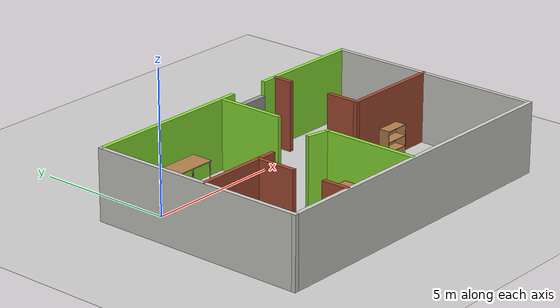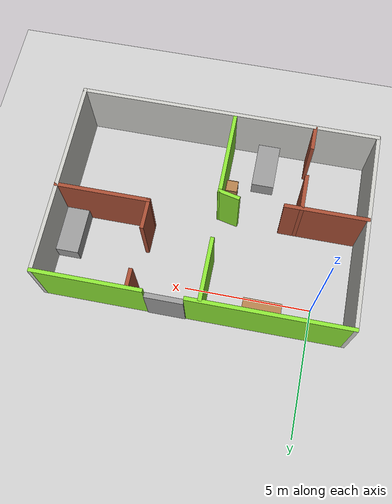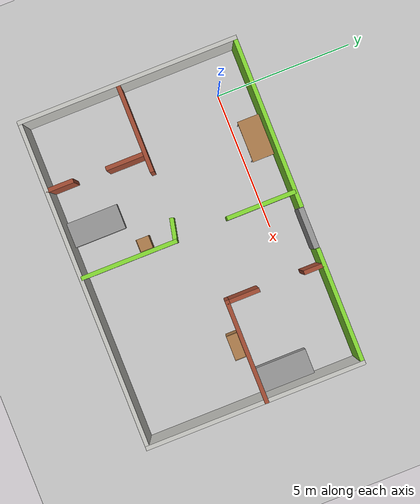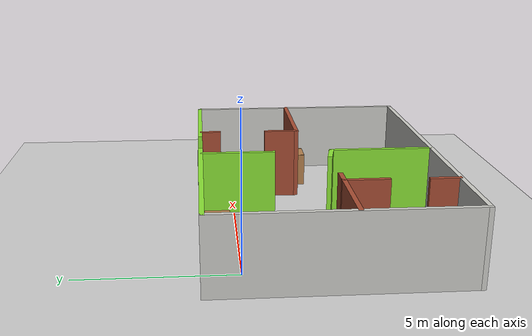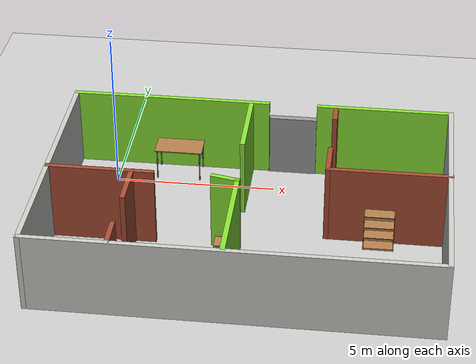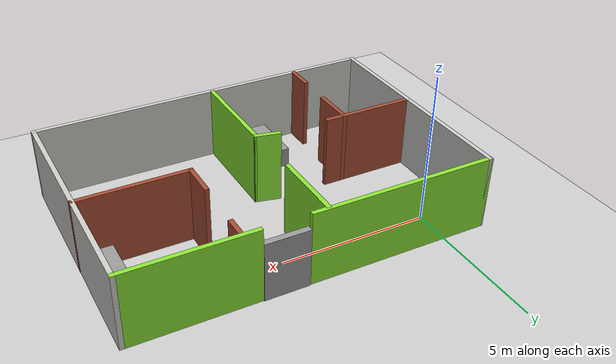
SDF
<sdf version="1.6">
 <world name="default">
  <light name="sun" type="directional">
   <pose>0 0 10 0 -0 0</pose>
   <diffuse>0.8 0.8 0.8 1</diffuse>
   <specular>0.2 0.2 0.2 1</specular>
   <attenuation>
    <range>1000</range>
    <constant>0.9</constant>
    <linear>0.01</linear>
    <quadratic>0.001</quadratic>
   </attenuation>
   <direction>-0.5 0.1 -0.9</direction>
  </light>
  <model name="ground_plane">
   <static>1</static>
   <link name="link">
    <collision name="collision">
     <geometry><plane><normal>0 0 1</normal><size>100 100</size></plane></geometry>
     <surface>
      <contact><collide_bitmask>65535</collide_bitmask></contact>
      <friction><ode><mu>100</mu><mu2>50</mu2></ode></friction>
     </surface>
    </collision>
    <visual name="visual">
     <cast_shadows>0</cast_shadows>
     <geometry><plane><normal>0 0 1</normal><size>100 100</size></plane></geometry>
     <material>
      <script><uri>file://media/materials/scripts/gazebo.material</uri><name>Gazebo/Grey</name></script>
     </material>
    </visual>
   </link>
  </model>
  <gravity>0 0 -9.8</gravity>
  <magnetic_field>6e-06 2.3e-05 -4.2e-05</magnetic_field>
  <atmosphere type="adiabatic"/>
  <physics name="default_physics" default="0" type="ode">
   <max_step_size>0.001</max_step_size>
   <real_time_factor>1</real_time_factor>
   <real_time_update_rate>1000</real_time_update_rate>
  </physics>
  <scene><ambient>0.4 0.4 0.4 1</ambient><background>0.7 0.7 0.7 1</background><shadows>1</shadows></scene>
  <audio><device>default</device></audio>
  <spherical_coordinates>
   <surface_model>EARTH_WGS84</surface_model>
   <latitude_deg>0</latitude_deg>
   <longitude_deg>0</longitude_deg>
   <elevation>0</elevation>
   <heading_deg>0</heading_deg>
  </spherical_coordinates>
  <model name="new_home">
   <pose>4.49837 -2.78991 0 0 -0 0</pose>
   <link name="Door_1">
    <collision name="Door_1_Collision">
     <geometry><box><size>1.4852 0.2 2</size></box></geometry>
     <pose>0 0 1 0 -0 0</pose>
    </collision>
    <visual name="Door_1_Visual">
     <pose>0 0 1 0 -0 0</pose>
     <geometry><box><size>1.4852 0.2 2</size></box></geometry>
     <material>
      <script><uri>file://media/materials/scripts/gazebo.material</uri><name>Gazebo/Grey</name></script>
     </material>
    </visual>
    <pose>1.00458 3.92529 0 0 -0 0</pose>
   </link>
   <link name="Wall_0">
    <collision name="Wall_0_Collision">
     <geometry><box><size>8 0.15 2.5</size></box></geometry>
     <pose>0 0 1.25 0 -0 0</pose>
    </collision>
    <visual name="Wall_0_Visual">
     <pose>0 0 1.25 0 -0 0</pose>
     <geometry><box><size>8 0.15 2.5</size></box></geometry>
     <material>
      <script><uri>file://media/materials/scripts/gazebo.material</uri><name>Gazebo/CeilingTiled</name></script>
      <ambient>0.541176 0.886275 0.203922 1</ambient>
     </material>
     <meta><layer>0</layer></meta>
    </visual>
    <pose>-5.92837 0 0 0 -0 1.5708</pose>
   </link>
   <link name="Wall_14">
    <collision name="Wall_14_Collision">
     <geometry><box><size>3.75 0.15 2.5</size></box></geometry>
     <pose>0 0 1.25 0 -0 0</pose>
    </collision>
    <visual name="Wall_14_Visual">
     <pose>0 0 1.25 0 -0 0</pose>
     <geometry><box><size>3.75 0.15 2.5</size></box></geometry>
     <material>
      <script><uri>file://media/materials/scripts/gazebo.material</uri><name>Gazebo/Bricks</name></script>
      <ambient>1 1 1 1</ambient>
     </material>
     <meta><layer>0</layer></meta>
    </visual>
    <pose>4.12837 0.395188 0 0 -0 3.14159</pose>
   </link>
   <link name="Wall_15">
    <collision name="Wall_15_Collision">
     <geometry><box><size>1.25 0.15 2.5</size></box></geometry>
     <pose>0 0 1.25 0 -0 0</pose>
    </collision>
    <visual name="Wall_15_Visual">
     <pose>0 0 1.25 0 -0 0</pose>
     <geometry><box><size>1.25 0.15 2.5</size></box></geometry>
     <material>
      <script><uri>file://media/materials/scripts/gazebo.material</uri><name>Gazebo/Bricks</name></script>
      <ambient>1 1 1 1</ambient>
     </material>
     <meta><layer>0</layer></meta>
    </visual>
    <pose>2.32837 0.945188 0 0 -0 1.5708</pose>
   </link>
   <link name="Wall_17">
    <collision name="Wall_17_Collision">
     <geometry><box><size>2.5 0.15 2.5</size></box></geometry>
     <pose>0 0 1.25 0 -0 0</pose>
    </collision>
    <visual name="Wall_17_Visual">
     <pose>0 0 1.25 0 -0 0</pose>
     <geometry><box><size>2.5 0.15 2.5</size></box></geometry>
     <material>
      <script><uri>file://media/materials/scripts/gazebo.material</uri><name>Gazebo/Grey</name></script>
      <ambient>0.541176 0.886275 0.203922 1</ambient>
     </material>
     <meta><layer>0</layer></meta>
    </visual>
    <pose>-0.326947 2.67972 0 0 -0 -1.5708</pose>
   </link>
   <link name="Wall_19">
    <collision name="Wall_19_Collision">
     <geometry><box><size>3.5 0.15 2.5</size></box></geometry>
     <pose>0 0 1.25 0 -0 0</pose>
    </collision>
    <visual name="Wall_19_Visual">
     <pose>0 0 1.25 0 -0 0</pose>
     <geometry><box><size>3.5 0.15 2.5</size></box></geometry>
     <material>
      <script><uri>file://media/materials/scripts/gazebo.material</uri><name>Gazebo/Grey</name></script>
      <ambient>0.541176 0.886275 0.203922 1</ambient>
     </material>
     <meta><layer>0</layer></meta>
    </visual>
    <pose>-0.246493 -2.16481 0 0 -0 -1.5708</pose>
   </link>
   <link name="Wall_2">
    <collision name="Wall_2_Collision">
     <geometry><box><size>8 0.15 2.5</size></box></geometry>
     <pose>0 0 1.25 0 -0 0</pose>
    </collision>
    <visual name="Wall_2_Visual">
     <pose>0 0 1.25 0 -0 0</pose>
     <geometry><box><size>8 0.15 2.5</size></box></geometry>
     <material>
      <script><uri>file://media/materials/scripts/gazebo.material</uri><name>Gazebo/CeilingTiled</name></script>
      <ambient>0.541176 0.886275 0.203922 1</ambient>
     </material>
     <meta><layer>0</layer></meta>
    </visual>
    <pose>5.92163 0 0 0 -0 -1.5708</pose>
   </link>
   <link name="Wall_21">
    <collision name="Wall_21_Collision">
     <geometry><box><size>3.25 0.15 2.5</size></box></geometry>
     <pose>0 0 1.25 0 -0 0</pose>
    </collision>
    <visual name="Wall_21_Visual">
     <pose>0 0 1.25 0 -0 0</pose>
     <geometry><box><size>3.25 0.15 2.5</size></box></geometry>
     <material>
      <script><uri>file://media/materials/scripts/gazebo.material</uri><name>Gazebo/Bricks</name></script>
      <ambient>1 1 1 1</ambient>
     </material>
     <meta><layer>0</layer></meta>
    </visual>
    <pose>-4.34841 -0.349015 0 0 -0 0</pose>
   </link>
   <link name="Wall_23">
    <collision name="Wall_23_Collision">
     <geometry><box><size>0.891752 0.15 2.5</size></box></geometry>
     <pose>0 0 1.25 0 -0 0</pose>
    </collision>
    <visual name="Wall_23_Visual">
     <pose>0 0 1.25 0 -0 0</pose>
     <geometry><box><size>0.891752 0.15 2.5</size></box></geometry>
     <material>
      <script><uri>file://media/materials/scripts/gazebo.material</uri><name>Gazebo/Grey</name></script>
      <ambient>0.541176 0.886275 0.203922 1</ambient>
     </material>
     <meta><layer>0</layer></meta>
    </visual>
    <pose>-0.608537 -0.409355 0 0 -0 -0.218669</pose>
   </link>
   <link name="Wall_26">
    <collision name="Wall_26_Collision">
     <geometry><box><size>1.5 0.15 2.5</size></box></geometry>
     <pose>0 0 1.25 0 -0 0</pose>
    </collision>
    <visual name="Wall_26_Visual">
     <pose>0 0 1.25 0 -0 0</pose>
     <geometry><box><size>1.5 0.15 2.5</size></box></geometry>
     <material>
      <script><uri>file://media/materials/scripts/gazebo.material</uri><name>Gazebo/Bricks</name></script>
      <ambient>1 1 1 1</ambient>
     </material>
     <meta><layer>0</layer></meta>
    </visual>
    <pose>-3.40432 -1.02401 0 0 -0 -1.5708</pose>
   </link>
   <link name="Wall_3">
    <collision name="Wall_3_Collision">
     <geometry><box><size>12 0.15 2.5</size></box></geometry>
     <pose>0 0 1.25 0 -0 0</pose>
    </collision>
    <visual name="Wall_3_Visual">
     <pose>0 0 1.25 0 -0 0</pose>
     <geometry><box><size>12 0.15 2.5</size></box></geometry>
     <material>
      <script><uri>file://media/materials/scripts/gazebo.material</uri><name>Gazebo/CeilingTiled</name></script>
      <ambient>0.541176 0.886275 0.203922 1</ambient>
     </material>
     <meta><layer>0</layer></meta>
    </visual>
    <pose>-0.003374 -3.925 0 0 -0 3.14159</pose>
   </link>
   <link name="Wall_30">
    <collision name="Wall_30_Collision">
     <geometry><box><size>1 0.15 2.5</size></box></geometry>
     <pose>0 0 1.25 0 -0 0</pose>
    </collision>
    <visual name="Wall_30_Visual">
     <pose>0 0 1.25 0 -0 0</pose>
     <geometry><box><size>1 0.15 2.5</size></box></geometry>
     <material>
      <script><uri>file://media/materials/scripts/gazebo.material</uri><name>Gazebo/Bricks</name></script>
      <ambient>1 1 1 1</ambient>
     </material>
     <meta><layer>0</layer></meta>
    </visual>
    <pose>-3.44455 -3.44389 0 0 -0 1.5708</pose>
   </link>
   <link name="Wall_32">
    <collision name="Wall_32_Collision">
     <geometry><box><size>6.25 0.15 2.5</size></box></geometry>
     <pose>0 0 1.25 0 -0 0</pose>
    </collision>
    <visual name="Wall_32_Visual">
     <pose>0 0 1.25 0 -0 0</pose>
     <geometry><box><size>6.25 0.15 2.5</size></box></geometry>
     <material>
      <script><uri>file://media/materials/scripts/gazebo.material</uri><name>Gazebo/Grey</name></script>
      <ambient>0.541176 0.886275 0.203922 1</ambient>
     </material>
     <meta><layer>0</layer></meta>
    </visual>
    <pose>-2.87837 3.925 0 0 -0 0</pose>
   </link>
   <link name="Wall_36">
    <collision name="Wall_36_Collision">
     <geometry><box><size>4.25 0.15 2.5</size></box></geometry>
     <pose>0 0 1.25 0 -0 0</pose>
    </collision>
    <visual name="Wall_36_Visual">
     <pose>0 0 1.25 0 -0 0</pose>
     <geometry><box><size>4.25 0.15 2.5</size></box></geometry>
     <material>
      <script><uri>file://media/materials/scripts/gazebo.material</uri><name>Gazebo/Grey</name></script>
      <ambient>0.541176 0.886275 0.203922 1</ambient>
     </material>
     <meta><layer>0</layer></meta>
    </visual>
    <pose>3.87163 3.925 0 0 -0 3.14159</pose>
   </link>
   <link name="Wall_8">
    <collision name="Wall_8_Collision">
     <geometry><box><size>0.75 0.15 2.5</size></box></geometry>
     <pose>0 0 1.25 0 -0 0</pose>
    </collision>
    <visual name="Wall_8_Visual">
     <pose>0 0 1.25 0 -0 0</pose>
     <geometry><box><size>0.75 0.15 2.5</size></box></geometry>
     <material>
      <script><uri>file://media/materials/scripts/gazebo.material</uri><name>Gazebo/Bricks</name></script>
      <ambient>1 1 1 1</ambient>
     </material>
     <meta><layer>0</layer></meta>
    </visual>
    <pose>2.34816 3.55472 0 0 -0 -1.5708</pose>
   </link>
   <static>1</static>
  </model>
  <model name="bookshelf">
   <static>1</static>
   <link name="link">
    <inertial><mass>1</mass></inertial>
    <collision name="back">
     <pose>0 0.005 0.6 0 -0 0</pose>
     <geometry><box><size>0.9 0.01 1.2</size></box></geometry>
    </collision>
    <visual name="visual1">
     <pose>0 0.005 0.6 0 -0 0</pose>
     <geometry><box><size>0.9 0.01 1.2</size></box></geometry>
     <material>
      <script><uri>file://media/materials/scripts/gazebo.material</uri><name>Gazebo/Wood</name></script>
     </material>
    </visual>
    <collision name="left_side">
     <pose>0.45 -0.195 0.6 0 -0 0</pose>
     <geometry><box><size>0.02 0.4 1.2</size></box></geometry>
    </collision>
    <visual name="visual2">
     <pose>0.45 -0.195 0.6 0 -0 0</pose>
     <geometry><box><size>0.02 0.4 1.2</size></box></geometry>
     <material>
      <script><uri>file://media/materials/scripts/gazebo.material</uri><name>Gazebo/Wood</name></script>
     </material>
    </visual>
    <collision name="right_side">
     <pose>-0.45 -0.195 0.6 0 -0 0</pose>
     <geometry><box><size>0.02 0.4 1.2</size></box></geometry>
    </collision>
    <visual name="visual3">
     <pose>-0.45 -0.195 0.6 0 -0 0</pose>
     <geometry><box><size>0.02 0.4 1.2</size></box></geometry>
     <material>
      <script><uri>file://media/materials/scripts/gazebo.material</uri><name>Gazebo/Wood</name></script>
     </material>
    </visual>
    <collision name="bottom">
     <pose>0 -0.195 0.03 0 -0 0</pose>
     <geometry><box><size>0.88 0.4 0.06</size></box></geometry>
    </collision>
    <visual name="visual4">
     <pose>0 -0.195 0.03 0 -0 0</pose>
     <geometry><box><size>0.88 0.4 0.06</size></box></geometry>
     <material>
      <script><uri>file://media/materials/scripts/gazebo.material</uri><name>Gazebo/Wood</name></script>
     </material>
    </visual>
    <collision name="top">
     <pose>0 -0.195 1.19 0 -0 0</pose>
     <geometry><box><size>0.88 0.4 0.02</size></box></geometry>
    </collision>
    <visual name="visual5">
     <pose>0 -0.195 1.19 0 -0 0</pose>
     <geometry><box><size>0.88 0.4 0.02</size></box></geometry>
     <material>
      <script><uri>file://media/materials/scripts/gazebo.material</uri><name>Gazebo/Wood</name></script>
     </material>
    </visual>
    <collision name="low_shelf">
     <pose>0 -0.195 0.43 0 -0 0</pose>
     <geometry><box><size>0.88 0.4 0.02</size></box></geometry>
    </collision>
    <visual name="visual6">
     <pose>0 -0.195 0.43 0 -0 0</pose>
     <geometry><box><size>0.88 0.4 0.02</size></box></geometry>
     <material>
      <script><uri>file://media/materials/scripts/gazebo.material</uri><name>Gazebo/Wood</name></script>
     </material>
    </visual>
    <collision name="high_shelf">
     <pose>0 -0.195 0.8 0 -0 0</pose>
     <geometry><box><size>0.88 0.4 0.02</size></box></geometry>
    </collision>
    <visual name="visual7">
     <pose>0 -0.195 0.8 0 -0 0</pose>
     <geometry><box><size>0.88 0.4 0.02</size></box></geometry>
     <material>
      <script><uri>file://media/materials/scripts/gazebo.material</uri><name>Gazebo/Wood</name></script>
     </material>
    </visual>
   </link>
   <pose>8.42375 -2.47821 0 0 -0 0</pose>
  </model>
  <model name="cabinet">
   <static>1</static>
   <link name="cabinet_bottom_plate">
    <inertial>
     <pose>0 0 -1 0 -0 0</pose>
     <inertia><ixx>2.05</ixx><ixy>0</ixy><ixz>0</ixz><iyy>2.05</iyy><iyz>0</iyz><izz>2.05</izz></inertia>
     <mass>25</mass>
    </inertial>
    <collision name="cabinet_bottom_plate_geom">
     <pose>0 0 0.01 0 -0 0</pose>
     <geometry><box><size>0.45 0.45 0.02</size></box></geometry>
    </collision>
    <visual name="cabinet_bottom_plate_geom_visual">
     <pose>0 0 0.01 0 -0 0</pose>
     <geometry><box><size>0.45 0.45 0.02</size></box></geometry>
     <material>
      <script><uri>file://media/materials/scripts/gazebo.material</uri><name>Gazebo/Wood</name></script>
     </material>
    </visual>
    <collision name="cabinet_bottom_plate_geom_cabinet_back_plate">
     <pose>0.235 0 0.51 0 -0 0</pose>
     <geometry><box><size>0.02 0.45 1.02</size></box></geometry>
    </collision>
    <visual name="cabinet_bottom_plate_geom_cabinet_back_plate_visual">
     <pose>0.235 0 0.51 0 -0 0</pose>
     <geometry><box><size>0.02 0.45 1.02</size></box></geometry>
     <material>
      <script><uri>file://media/materials/scripts/gazebo.material</uri><name>Gazebo/Wood</name></script>
     </material>
    </visual>
    <collision name="cabinet_bottom_plate_geom_cabinet_left_plate">
     <pose>0 0.235 0.51 0 -0 0</pose>
     <geometry><box><size>0.45 0.02 1.02</size></box></geometry>
    </collision>
    <visual name="cabinet_bottom_plate_geom_cabinet_left_plate_visual">
     <pose>0 0.235 0.51 0 -0 0</pose>
     <geometry><box><size>0.45 0.02 1.02</size></box></geometry>
     <material>
      <script><uri>file://media/materials/scripts/gazebo.material</uri><name>Gazebo/Wood</name></script>
     </material>
    </visual>
    <collision name="cabinet_bottom_plate_geom_cabinet_middle_plate">
     <pose>0 0 0.51 0 -0 0</pose>
     <geometry><box><size>0.45 0.45 0.02</size></box></geometry>
    </collision>
    <visual name="cabinet_bottom_plate_geom_cabinet_middle_plate_visual">
     <pose>0 0 0.51 0 -0 0</pose>
     <geometry><box><size>0.45 0.45 0.02</size></box></geometry>
     <material>
      <script><uri>file://media/materials/scripts/gazebo.material</uri><name>Gazebo/Wood</name></script>
     </material>
    </visual>
    <collision name="cabinet_bottom_plate_geom_cabinet_right_plate">
     <pose>0 -0.235 0.51 0 -0 0</pose>
     <geometry><box><size>0.45 0.02 1.02</size></box></geometry>
    </collision>
    <visual name="cabinet_bottom_plate_geom_cabinet_right_plate_visual">
     <pose>0 -0.235 0.51 0 -0 0</pose>
     <geometry><box><size>0.45 0.02 1.02</size></box></geometry>
     <material>
      <script><uri>file://media/materials/scripts/gazebo.material</uri><name>Gazebo/Wood</name></script>
     </material>
    </visual>
    <collision name="cabinet_bottom_plate_geom_cabinet_top_plate">
     <pose>0 0 1.01 0 -0 0</pose>
     <geometry><box><size>0.45 0.45 0.02</size></box></geometry>
    </collision>
    <visual name="cabinet_bottom_plate_geom_cabinet_top_plate_visual">
     <pose>0 0 1.01 0 -0 0</pose>
     <geometry><box><size>0.45 0.45 0.02</size></box></geometry>
     <material>
      <script><uri>file://media/materials/scripts/gazebo.material</uri><name>Gazebo/Wood</name></script>
     </material>
    </visual>
   </link>
   <pose>3.92428 -4.3281 0 0 -0 0</pose>
  </model>
  <model name="unit_box">
   <pose>2.71562 -5.69364 0.335339 0 0 -1e-06</pose>
   <link name="link">
    <inertial>
     <mass>1</mass>
     <inertia>
      <ixx>0.166667</ixx>
      <ixy>0</ixy>
      <ixz>0</ixz>
      <iyy>0.166667</iyy>
      <iyz>0</iyz>
      <izz>0.166667</izz>
     </inertia>
    </inertial>
    <collision name="collision"><geometry><box><size>0.901099 1.89225 0.670678</size></box></geometry></collision>
    <visual name="visual">
     <geometry><box><size>0.901099 1.89225 0.670678</size></box></geometry>
     <material>
      <script><name>Gazebo/Grey</name><uri>file://media/materials/scripts/gazebo.material</uri></script>
     </material>
    </visual>
   </link>
  </model>
  <model name="table">
   <static>1</static>
   <link name="link">
    <collision name="surface">
     <pose>0 0 1 0 -0 0</pose>
     <geometry><box><size>1.5 0.8 0.03</size></box></geometry>
     <surface><friction><ode><mu>0.6</mu><mu2>0.6</mu2></ode></friction></surface>
    </collision>
    <visual name="visual1">
     <pose>0 0 1 0 -0 0</pose>
     <geometry><box><size>1.5 0.8 0.03</size></box></geometry>
     <material>
      <script><uri>file://media/materials/scripts/gazebo.material</uri><name>Gazebo/Wood</name></script>
     </material>
    </visual>
    <collision name="front_left_leg">
     <pose>0.68 0.38 0.5 0 -0 0</pose>
     <geometry><cylinder><radius>0.02</radius><length>1</length></cylinder></geometry>
    </collision>
    <visual name="front_left_leg">
     <pose>0.68 0.38 0.5 0 -0 0</pose>
     <geometry><cylinder><radius>0.02</radius><length>1</length></cylinder></geometry>
     <material>
      <script><uri>file://media/materials/scripts/gazebo.material</uri><name>Gazebo/Grey</name></script>
     </material>
    </visual>
    <collision name="front_right_leg">
     <pose>0.68 -0.38 0.5 0 -0 0</pose>
     <geometry><cylinder><radius>0.02</radius><length>1</length></cylinder></geometry>
    </collision>
    <visual name="front_right_leg">
     <pose>0.68 -0.38 0.5 0 -0 0</pose>
     <geometry><cylinder><radius>0.02</radius><length>1</length></cylinder></geometry>
     <material>
      <script><uri>file://media/materials/scripts/gazebo.material</uri><name>Gazebo/Grey</name></script>
     </material>
    </visual>
    <collision name="back_right_leg">
     <pose>-0.68 -0.38 0.5 0 -0 0</pose>
     <geometry><cylinder><radius>0.02</radius><length>1</length></cylinder></geometry>
    </collision>
    <visual name="back_right_leg">
     <pose>-0.68 -0.38 0.5 0 -0 0</pose>
     <geometry><cylinder><radius>0.02</radius><length>1</length></cylinder></geometry>
     <material>
      <script><uri>file://media/materials/scripts/gazebo.material</uri><name>Gazebo/Grey</name></script>
     </material>
    </visual>
    <collision name="back_left_leg">
     <pose>-0.68 0.38 0.5 0 -0 0</pose>
     <geometry><cylinder><radius>0.02</radius><length>1</length></cylinder></geometry>
    </collision>
    <visual name="back_left_leg">
     <pose>-0.68 0.38 0.5 0 -0 0</pose>
     <geometry><cylinder><radius>0.02</radius><length>1</length></cylinder></geometry>
     <material>
      <script><uri>file://media/materials/scripts/gazebo.material</uri><name>Gazebo/Grey</name></script>
     </material>
    </visual>
   </link>
   <pose>1.92027 0.640149 0 0 -0 0</pose>
  </model>
  <model name="unit_box_clone">
   <pose>9.88244 -1.39443 0.335339 0 0 -1e-06</pose>
   <link name="link">
    <inertial>
     <mass>1</mass>
     <inertia>
      <ixx>0.166667</ixx>
      <ixy>0</ixy>
      <ixz>0</ixz>
      <iyy>0.166667</iyy>
      <iyz>0</iyz>
      <izz>0.166667</izz>
     </inertia>
    </inertial>
    <collision name="collision"><geometry><box><size>0.901099 1.89225 0.670678</size></box></geometry></collision>
    <visual name="visual">
     <geometry><box><size>0.901099 1.89225 0.670678</size></box></geometry>
     <material>
      <script><name>Gazebo/Grey</name><uri>file://media/materials/scripts/gazebo.material</uri></script>
     </material>
    </visual>
   </link>
  </model>
 </world>
</sdf>
